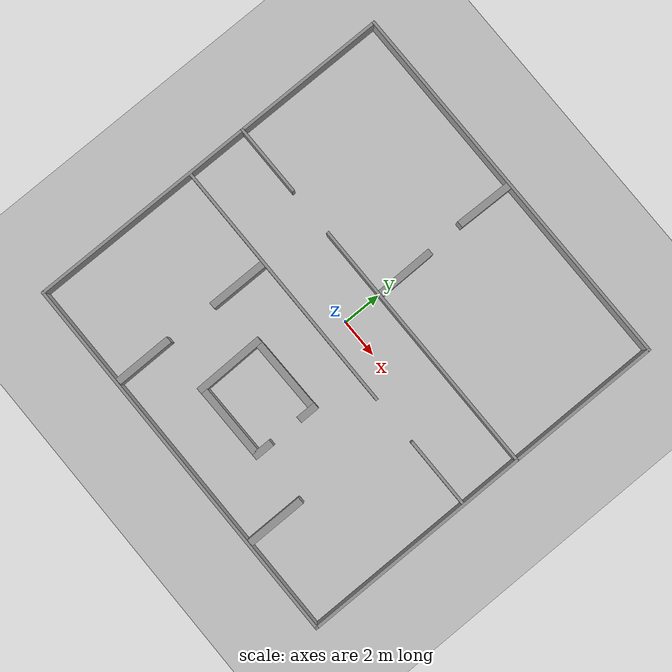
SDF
<sdf version='1.7'>
  <world name='tube'>
    <light name='sun' type='directional'>
      <cast_shadows>1</cast_shadows>
      <pose>0 0 10 0 -0 0</pose>
      <diffuse>0.8 0.8 0.8 1</diffuse>
      <specular>0.2 0.2 0.2 1</specular>
      <attenuation>
        <range>1000</range>
        <constant>0.9</constant>
        <linear>0.01</linear>
        <quadratic>0.001</quadratic>
      </attenuation>
      <direction>-0.5 0.1 -0.9</direction>
      <spot>
        <inner_angle>0</inner_angle>
        <outer_angle>0</outer_angle>
        <falloff>0</falloff>
      </spot>
    </light>
    <model name='ground_plane'>
      <static>1</static>
      <link name='link'>
        <collision name='collision'>
          <geometry>
            <plane>
              <normal>0 0 1</normal>
              <size>100 100</size>
            </plane>
          </geometry>
          <surface>
            <contact>
              <collide_bitmask>65535</collide_bitmask>
              <ode/>
            </contact>
            <friction>
              <ode>
                <mu>100</mu>
                <mu2>50</mu2>
              </ode>
              <torsional>
                <ode/>
              </torsional>
            </friction>
            <bounce/>
          </surface>
          <max_contacts>10</max_contacts>
        </collision>
        <visual name='visual'>
          <cast_shadows>0</cast_shadows>
          <geometry>
            <plane>
              <normal>0 0 1</normal>
              <size>100 100</size>
            </plane>
          </geometry>
          <material>
            <script>
              <uri>file://media/materials/scripts/gazebo.material</uri>
              <name>Gazebo/Grey</name>
            </script>
          </material>
        </visual>
        <self_collide>0</self_collide>
        <enable_wind>0</enable_wind>
        <kinematic>0</kinematic>
      </link>
    </model>
    <physics name='default_physics' default='1' type='ode'>
      <max_step_size>0.001</max_step_size>
      <real_time_factor>1</real_time_factor>
      <real_time_update_rate>1000</real_time_update_rate>
    </physics>
    <scene>
      <ambient>0.4 0.4 0.4 1</ambient>
      <background>0.7 0.7 0.7 1</background>
      <shadows>0</shadows>
    </scene>
    <model name='tube_obstacles'>
      <static>1</static>
      <link name='body'>
        <collision name='col_0'>
          <pose>0 -10 0.5 0 -0 0</pose>
          <geometry>
            <box>
              <size>20.15 0.15 1</size>
            </box>
          </geometry>
          <max_contacts>10</max_contacts>
          <surface>
            <contact>
              <ode/>
            </contact>
            <bounce/>
            <friction>
              <torsional>
                <ode/>
              </torsional>
              <ode/>
            </friction>
          </surface>
        </collision>
        <visual name='vis_0'>
          <pose>0 -10 0.5 0 -0 0</pose>
          <geometry>
            <box>
              <size>20.15 0.15 1</size>
            </box>
          </geometry>
          <material>
            <script>
              <uri>file://media/materials/scripts/gazebo.material</uri>
              <name>Gazebo/Grey</name>
            </script>
          </material>
        </visual>
        <collision name='col_1'>
          <pose>10 0 0.5 0 -0 1.5708</pose>
          <geometry>
            <box>
              <size>20.15 0.15 1</size>
            </box>
          </geometry>
          <max_contacts>10</max_contacts>
          <surface>
            <contact>
              <ode/>
            </contact>
            <bounce/>
            <friction>
              <torsional>
                <ode/>
              </torsional>
              <ode/>
            </friction>
          </surface>
        </collision>
        <visual name='vis_1'>
          <pose>10 0 0.5 0 -0 1.5708</pose>
          <geometry>
            <box>
              <size>20.15 0.15 1</size>
            </box>
          </geometry>
          <material>
            <script>
              <uri>file://media/materials/scripts/gazebo.material</uri>
              <name>Gazebo/Grey</name>
            </script>
          </material>
        </visual>
        <collision name='col_2'>
          <pose>0 10 0.5 0 -0 3.14159</pose>
          <geometry>
            <box>
              <size>20.15 0.15 1</size>
            </box>
          </geometry>
          <max_contacts>10</max_contacts>
          <surface>
            <contact>
              <ode/>
            </contact>
            <bounce/>
            <friction>
              <torsional>
                <ode/>
              </torsional>
              <ode/>
            </friction>
          </surface>
        </collision>
        <visual name='vis_2'>
          <pose>0 10 0.5 0 -0 3.14159</pose>
          <geometry>
            <box>
              <size>20.15 0.15 1</size>
            </box>
          </geometry>
          <material>
            <script>
              <uri>file://media/materials/scripts/gazebo.material</uri>
              <name>Gazebo/Grey</name>
            </script>
          </material>
        </visual>
        <collision name='col_3'>
          <pose>-10 0 0.5 0 0 -1.5708</pose>
          <geometry>
            <box>
              <size>20.15 0.15 1</size>
            </box>
          </geometry>
          <max_contacts>10</max_contacts>
          <surface>
            <contact>
              <ode/>
            </contact>
            <bounce/>
            <friction>
              <torsional>
                <ode/>
              </torsional>
              <ode/>
            </friction>
          </surface>
        </collision>
        <visual name='vis_3'>
          <pose>-10 0 0.5 0 0 -1.5708</pose>
          <geometry>
            <box>
              <size>20.15 0.15 1</size>
            </box>
          </geometry>
          <material>
            <script>
              <uri>file://media/materials/scripts/gazebo.material</uri>
              <name>Gazebo/Grey</name>
            </script>
          </material>
        </visual>
        <collision name='col_4_left'>
          <pose>-8.1625 2 0.5 0 -0 0</pose>
          <geometry>
            <box>
              <size>3.825 0.15 1</size>
            </box>
          </geometry>
          <max_contacts>10</max_contacts>
          <surface>
            <contact>
              <ode/>
            </contact>
            <bounce/>
            <friction>
              <torsional>
                <ode/>
              </torsional>
              <ode/>
            </friction>
          </surface>
        </collision>
        <visual name='vis_4_left'>
          <pose>-8.1625 2 0.5 0 -0 0</pose>
          <geometry>
            <box>
              <size>3.825 0.15 1</size>
            </box>
          </geometry>
          <material>
            <script>
              <uri>file://media/materials/scripts/gazebo.material</uri>
              <name>Gazebo/Grey</name>
            </script>
          </material>
        </visual>
        <collision name='col_4_right'>
          <pose>3.1625 2 0.5 0 -0 0</pose>
          <geometry>
            <box>
              <size>13.825 0.15 1</size>
            </box>
          </geometry>
          <max_contacts>10</max_contacts>
          <surface>
            <contact>
              <ode/>
            </contact>
            <bounce/>
            <friction>
              <torsional>
                <ode/>
              </torsional>
              <ode/>
            </friction>
          </surface>
        </collision>
        <visual name='vis_4_right'>
          <pose>3.1625 2 0.5 0 -0 0</pose>
          <geometry>
            <box>
              <size>13.825 0.15 1</size>
            </box>
          </geometry>
          <material>
            <script>
              <uri>file://media/materials/scripts/gazebo.material</uri>
              <name>Gazebo/Grey</name>
            </script>
          </material>
        </visual>
        <collision name='col_5_left'>
          <pose>-3.1625 -1.2 0.5 0 -0 0</pose>
          <geometry>
            <box>
              <size>13.825 0.15 1</size>
            </box>
          </geometry>
          <max_contacts>10</max_contacts>
          <surface>
            <contact>
              <ode/>
            </contact>
            <bounce/>
            <friction>
              <torsional>
                <ode/>
              </torsional>
              <ode/>
            </friction>
          </surface>
        </collision>
        <visual name='vis_5_left'>
          <pose>-3.1625 -1.2 0.5 0 -0 0</pose>
          <geometry>
            <box>
              <size>13.825 0.15 1</size>
            </box>
          </geometry>
          <material>
            <script>
              <uri>file://media/materials/scripts/gazebo.material</uri>
              <name>Gazebo/Grey</name>
            </script>
          </material>
        </visual>
        <collision name='col_5_right'>
          <pose>8.1625 -1.2 0.5 0 -0 0</pose>
          <geometry>
            <box>
              <size>3.825 0.15 1</size>
            </box>
          </geometry>
          <max_contacts>10</max_contacts>
          <surface>
            <contact>
              <ode/>
            </contact>
            <bounce/>
            <friction>
              <torsional>
                <ode/>
              </torsional>
              <ode/>
            </friction>
          </surface>
        </collision>
        <visual name='vis_5_right'>
          <pose>8.1625 -1.2 0.5 0 -0 0</pose>
          <geometry>
            <box>
              <size>3.825 0.15 1</size>
            </box>
          </geometry>
          <material>
            <script>
              <uri>file://media/materials/scripts/gazebo.material</uri>
              <name>Gazebo/Grey</name>
            </script>
          </material>
        </visual>
        <self_collide>0</self_collide>
        <enable_wind>0</enable_wind>
        <kinematic>0</kinematic>
      </link>
    </model>
    <gravity>0 0 -9.8</gravity>
    <magnetic_field>6e-06 2.3e-05 -4.2e-05</magnetic_field>
    <atmosphere type='adiabatic'/>
    <audio>
      <device>default</device>
    </audio>
    <wind/>
    <spherical_coordinates>
      <surface_model>EARTH_WGS84</surface_model>
      <latitude_deg>0</latitude_deg>
      <longitude_deg>0</longitude_deg>
      <elevation>0</elevation>
      <heading_deg>0</heading_deg>
    </spherical_coordinates>
    <model name='manual_wall_upper_1'>
      <static>1</static>
      <pose>-0.057819 8.46207 0.5 0 0 -0.019242</pose>
      <link name='link'>
        <collision name='collision'>
          <geometry>
            <box>
              <size>0.356011 2.95948078 1</size>
            </box>
          </geometry>
          <surface>
            <contact>
              <ode/>
            </contact>
            <friction>
              <ode/>
              <torsional>
                <ode/>
              </torsional>
            </friction>
            <bounce/>
          </surface>
          <max_contacts>10</max_contacts>
        </collision>
        <visual name='visual'>
          <geometry>
            <box>
              <size>0.356011 2.95948078 1</size>
            </box>
          </geometry>
          <material>
            <script>
              <uri>file://media/materials/scripts/gazebo.material</uri>
              <name>Gazebo/Grey</name>
            </script>
          </material>
        </visual>
        <self_collide>0</self_collide>
        <enable_wind>0</enable_wind>
        <kinematic>0</kinematic>
      </link>
    </model>
    <model name='manual_wall_upper_2'>
      <static>1</static>
      <pose>0.03956 3.59508 0.5 0 -0 0.011815</pose>
      <link name='link'>
        <collision name='collision'>
          <geometry>
            <box>
              <size>0.356011 3.05764 1</size>
            </box>
          </geometry>
          <surface>
            <contact>
              <ode/>
            </contact>
            <friction>
              <ode/>
              <torsional>
                <ode/>
              </torsional>
            </friction>
            <bounce/>
          </surface>
          <max_contacts>10</max_contacts>
        </collision>
        <visual name='visual'>
          <geometry>
            <box>
              <size>0.356011 3.05764 1</size>
            </box>
          </geometry>
          <material>
            <script>
              <uri>file://media/materials/scripts/gazebo.material</uri>
              <name>Gazebo/Grey</name>
            </script>
          </material>
        </visual>
        <self_collide>0</self_collide>
        <enable_wind>0</enable_wind>
        <kinematic>0</kinematic>
      </link>
    </model>
    <model name='manual_wall_lower_left'>
      <static>1</static>
      <pose>-1.85268 -5.45434 0.5 0 -0 0.018171</pose>
      <link name='link'>
        <collision name='collision'>
          <geometry>
            <box>
              <size>0.356011 3.68816 1</size>
            </box>
          </geometry>
          <surface>
            <contact>
              <ode/>
            </contact>
            <friction>
              <ode/>
              <torsional>
                <ode/>
              </torsional>
            </friction>
            <bounce/>
          </surface>
          <max_contacts>10</max_contacts>
        </collision>
        <visual name='visual'>
          <geometry>
            <box>
              <size>0.356011 3.68816 1</size>
            </box>
          </geometry>
          <material>
            <script>
              <uri>file://media/materials/scripts/gazebo.material</uri>
              <name>Gazebo/Grey</name>
            </script>
          </material>
        </visual>
        <self_collide>0</self_collide>
        <enable_wind>0</enable_wind>
        <kinematic>0</kinematic>
      </link>
    </model>
    <model name='manual_wall_lower_top'>
      <static>1</static>
      <pose>0.123353 -3.75177 0.5 0 0 -1.55785</pose>
      <link name='link'>
        <collision name='collision'>
          <geometry>
            <box>
              <size>0.356011 3.68816 1</size>
            </box>
          </geometry>
          <surface>
            <contact>
              <ode/>
            </contact>
            <friction>
              <ode/>
              <torsional>
                <ode/>
              </torsional>
            </friction>
            <bounce/>
          </surface>
          <max_contacts>10</max_contacts>
        </collision>
        <visual name='visual'>
          <geometry>
            <box>
              <size>0.356011 3.68816 1</size>
            </box>
          </geometry>
          <material>
            <script>
              <uri>file://media/materials/scripts/gazebo.material</uri>
              <name>Gazebo/Grey</name>
            </script>
          </material>
        </visual>
        <self_collide>0</self_collide>
        <enable_wind>0</enable_wind>
        <kinematic>0</kinematic>
      </link>
    </model>
    <model name='manual_wall_lower_bottom'>
      <static>1</static>
      <pose>0.175934 -7.09871 0.5 0 0 -1.5636</pose>
      <link name='link'>
        <collision name='collision'>
          <geometry>
            <box>
              <size>0.356011 3.68816 1</size>
            </box>
          </geometry>
          <surface>
            <contact>
              <ode/>
            </contact>
            <friction>
              <ode/>
              <torsional>
                <ode/>
              </torsional>
            </friction>
            <bounce/>
          </surface>
          <max_contacts>10</max_contacts>
        </collision>
        <visual name='visual'>
          <geometry>
            <box>
              <size>0.356011 3.68816 1</size>
            </box>
          </geometry>
          <material>
            <script>
              <uri>file://media/materials/scripts/gazebo.material</uri>
              <name>Gazebo/Grey</name>
            </script>
          </material>
        </visual>
        <self_collide>0</self_collide>
        <enable_wind>0</enable_wind>
        <kinematic>0</kinematic>
      </link>
    </model>
    <model name='manual_wall_far_left_bottom'>
      <static>1</static>
      <pose>-4.56668 -8.38865 0.5 0 -0 0.006046</pose>
      <link name='link'>
        <collision name='collision'>
          <geometry>
            <box>
              <size>0.356011 3.05764 1</size>
            </box>
          </geometry>
          <surface>
            <contact>
              <ode/>
            </contact>
            <friction>
              <ode/>
              <torsional>
                <ode/>
              </torsional>
            </friction>
            <bounce/>
          </surface>
          <max_contacts>10</max_contacts>
        </collision>
        <visual name='visual'>
          <geometry>
            <box>
              <size>0.356011 3.05764 1</size>
            </box>
          </geometry>
          <material>
            <script>
              <uri>file://media/materials/scripts/gazebo.material</uri>
              <name>Gazebo/Grey</name>
            </script>
          </material>
        </visual>
        <self_collide>0</self_collide>
        <enable_wind>0</enable_wind>
        <kinematic>0</kinematic>
      </link>
    </model>
    <model name='manual_wall_far_left_mid'>
      <static>1</static>
      <pose>-4.51344 -2.80465 0.5 0 -0 0.001231</pose>
      <link name='link'>
        <collision name='collision'>
          <geometry>
            <box>
              <size>0.356011 3.05764 1</size>
            </box>
          </geometry>
          <surface>
            <contact>
              <ode/>
            </contact>
            <friction>
              <ode/>
              <torsional>
                <ode/>
              </torsional>
            </friction>
            <bounce/>
          </surface>
          <max_contacts>10</max_contacts>
        </collision>
        <visual name='visual'>
          <geometry>
            <box>
              <size>0.356011 3.05764 1</size>
            </box>
          </geometry>
          <material>
            <script>
              <uri>file://media/materials/scripts/gazebo.material</uri>
              <name>Gazebo/Grey</name>
            </script>
          </material>
        </visual>
        <self_collide>0</self_collide>
        <enable_wind>0</enable_wind>
        <kinematic>0</kinematic>
      </link>
    </model>
    <model name='manual_wall_far_right_bottom'>
      <static>1</static>
      <pose>5.06515 -8.38892 0.5 0 -0 0.002627</pose>
      <link name='link'>
        <collision name='collision'>
          <geometry>
            <box>
              <size>0.356011 3.05764 1</size>
            </box>
          </geometry>
          <surface>
            <contact>
              <ode/>
            </contact>
            <friction>
              <ode/>
              <torsional>
                <ode/>
              </torsional>
            </friction>
            <bounce/>
          </surface>
          <max_contacts>10</max_contacts>
        </collision>
        <visual name='visual'>
          <geometry>
            <box>
              <size>0.356011 3.05764 1</size>
            </box>
          </geometry>
          <material>
            <script>
              <uri>file://media/materials/scripts/gazebo.material</uri>
              <name>Gazebo/Grey</name>
            </script>
          </material>
        </visual>
        <self_collide>0</self_collide>
        <enable_wind>0</enable_wind>
        <kinematic>0</kinematic>
      </link>
    </model>
    <model name='manual_wall_lower_right_upper'>
      <static>1</static>
      <pose>2.14387 -4.05663 0.5 0 -0 0.006429</pose>
      <link name='link'>
        <collision name='collision'>
          <geometry>
            <box>
              <size>0.356011 1.04408 1</size>
            </box>
          </geometry>
          <surface>
            <contact>
              <ode/>
            </contact>
            <friction>
              <ode/>
              <torsional>
                <ode/>
              </torsional>
            </friction>
            <bounce/>
          </surface>
          <max_contacts>10</max_contacts>
        </collision>
        <visual name='visual'>
          <geometry>
            <box>
              <size>0.356011 1.04408 1</size>
            </box>
          </geometry>
          <material>
            <script>
              <uri>file://media/materials/scripts/gazebo.material</uri>
              <name>Gazebo/Grey</name>
            </script>
          </material>
        </visual>
        <self_collide>0</self_collide>
        <enable_wind>0</enable_wind>
        <kinematic>0</kinematic>
      </link>
    </model>
    <model name='manual_wall_lower_right_lower'>
      <static>1</static>
      <pose>2.14525 -6.74106 0.5 0 -0 0.006429</pose>
      <link name='link'>
        <collision name='collision'>
          <geometry>
            <box>
              <size>0.356011 1.04408 1</size>
            </box>
          </geometry>
          <surface>
            <contact>
              <ode/>
            </contact>
            <friction>
              <ode/>
              <torsional>
                <ode/>
              </torsional>
            </friction>
            <bounce/>
          </surface>
          <max_contacts>10</max_contacts>
        </collision>
        <visual name='visual'>
          <geometry>
            <box>
              <size>0.356011 1.04408 1</size>
            </box>
          </geometry>
          <material>
            <script>
              <uri>file://media/materials/scripts/gazebo.material</uri>
              <name>Gazebo/Grey</name>
            </script>
          </material>
        </visual>
        <self_collide>0</self_collide>
        <enable_wind>0</enable_wind>
        <kinematic>0</kinematic>
      </link>
    </model>
    <gui fullscreen='0'>
      <camera name='user_camera'>
        <pose>-9.43022 3.55513 9.09436 0 0.789797 0.220262</pose>
        <view_controller>orbit</view_controller>
        <projection_type>perspective</projection_type>
      </camera>
    </gui>
  </world>
</sdf>
